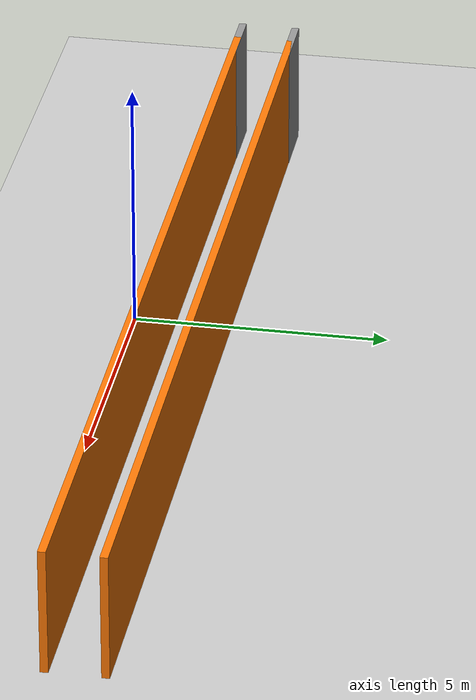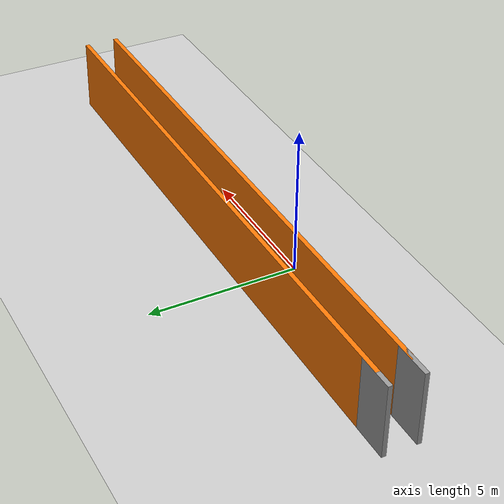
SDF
<sdf version="1.7">
 <world name="default">
  <light name="sun" type="directional">
   <pose>0 0 10 0 -0 0</pose>
   <diffuse>0.8 0.8 0.8 1</diffuse>
   <specular>0.2 0.2 0.2 1</specular>
   <attenuation>
    <range>1000</range>
    <constant>0.9</constant>
    <linear>0.01</linear>
    <quadratic>0.001</quadratic>
   </attenuation>
   <direction>-0.5 0.1 -0.9</direction>
   <spot><inner_angle>0</inner_angle><outer_angle>0</outer_angle><falloff>0</falloff></spot>
  </light>
  <model name="ground_plane">
   <static>1</static>
   <link name="link">
    <collision name="collision">
     <geometry><plane><normal>0 0 1</normal><size>100 100</size></plane></geometry>
     <surface>
      <contact><collide_bitmask>65535</collide_bitmask></contact>
      <friction><ode><mu>100</mu><mu2>50</mu2></ode></friction>
     </surface>
    </collision>
    <visual name="visual">
     <cast_shadows>0</cast_shadows>
     <geometry><plane><normal>0 0 1</normal><size>100 100</size></plane></geometry>
     <material>
      <script><uri>file://media/materials/scripts/gazebo.material</uri><name>Gazebo/Grey</name></script>
     </material>
    </visual>
   </link>
  </model>
  <gravity>0 0 -9.8</gravity>
  <magnetic_field>6e-06 2.3e-05 -4.2e-05</magnetic_field>
  <atmosphere type="adiabatic"/>
  <physics type="ode">
   <max_step_size>0.001</max_step_size>
   <real_time_factor>1</real_time_factor>
   <real_time_update_rate>1000</real_time_update_rate>
  </physics>
  <scene><ambient>0.4 0.4 0.4 1</ambient><background>0.7 0.7 0.7 1</background><shadows>1</shadows></scene>
  <spherical_coordinates>
   <surface_model>EARTH_WGS84</surface_model>
   <latitude_deg>0</latitude_deg>
   <longitude_deg>0</longitude_deg>
   <elevation>0</elevation>
   <heading_deg>0</heading_deg>
  </spherical_coordinates>
  <model name="wall1">
   <pose>2.48357 0.962208 0 0 -0 0</pose>
   <link name="Wall_14">
    <collision name="Wall_14_Collision">
     <geometry><box><size>20 0.15 2.5</size></box></geometry>
     <pose>0 0 1.25 0 -0 0</pose>
    </collision>
    <visual name="Wall_14_Visual">
     <pose>0 0 1.25 0 -0 0</pose>
     <geometry><box><size>20 0.15 2.5</size></box></geometry>
     <material>
      <script><uri>file://media/materials/scripts/gazebo.material</uri><name>Gazebo/Grey</name></script>
      <ambient>0.996078 0.47451 0.0196078 1</ambient>
     </material>
     <meta><layer>0</layer></meta>
    </visual>
    <pose>0 -0.212792 0 0 -0 0</pose>
   </link>
   <link name="Wall_18">
    <collision name="Wall_18_Collision">
     <geometry><box><size>20 0.15 2.5</size></box></geometry>
     <pose>0 0 1.25 0 -0 0</pose>
    </collision>
    <visual name="Wall_18_Visual">
     <pose>0 0 1.25 0 -0 0</pose>
     <geometry><box><size>20 0.15 2.5</size></box></geometry>
     <material>
      <script><uri>file://media/materials/scripts/gazebo.material</uri><name>Gazebo/Grey</name></script>
      <ambient>0.996078 0.47451 0.0196078 1</ambient>
     </material>
     <meta><layer>0</layer></meta>
    </visual>
    <pose>0 0.887208 0 0 -0 0</pose>
   </link>
   <static>1</static>
  </model>
  <model name="Untitled">
   <pose>-4.06703 0.964033 0 0 -0 0</pose>
   <link name="Wall_6">
    <collision name="Wall_6_Collision">
     <geometry><box><size>1.25 0.15 2.5</size></box></geometry>
     <pose>0 0 1.25 0 -0 0</pose>
    </collision>
    <visual name="Wall_6_Visual">
     <pose>0 0 1.25 0 -0 0</pose>
     <geometry><box><size>1.25 0.15 2.5</size></box></geometry>
     <material>
      <script><uri>file://media/materials/scripts/gazebo.material</uri><name>Gazebo/Grey</name></script>
      <ambient>1 1 1 1</ambient>
     </material>
     <meta><layer>0</layer></meta>
    </visual>
    <pose>-3.44203 -0.210967 0 0 -0 3.14159</pose>
   </link>
   <link name="Wall_8">
    <collision name="Wall_8_Collision">
     <geometry><box><size>1.25 0.15 2.5</size></box></geometry>
     <pose>0 0 1.25 0 -0 0</pose>
    </collision>
    <visual name="Wall_8_Visual">
     <pose>0 0 1.25 0 -0 0</pose>
     <geometry><box><size>1.25 0.15 2.5</size></box></geometry>
     <material>
      <script><uri>file://media/materials/scripts/gazebo.material</uri><name>Gazebo/Grey</name></script>
      <ambient>1 1 1 1</ambient>
     </material>
     <meta><layer>0</layer></meta>
    </visual>
    <pose>-3.42192 0.889033 0 0 -0 0</pose>
   </link>
   <static>1</static>
  </model>
 </world>
</sdf>
